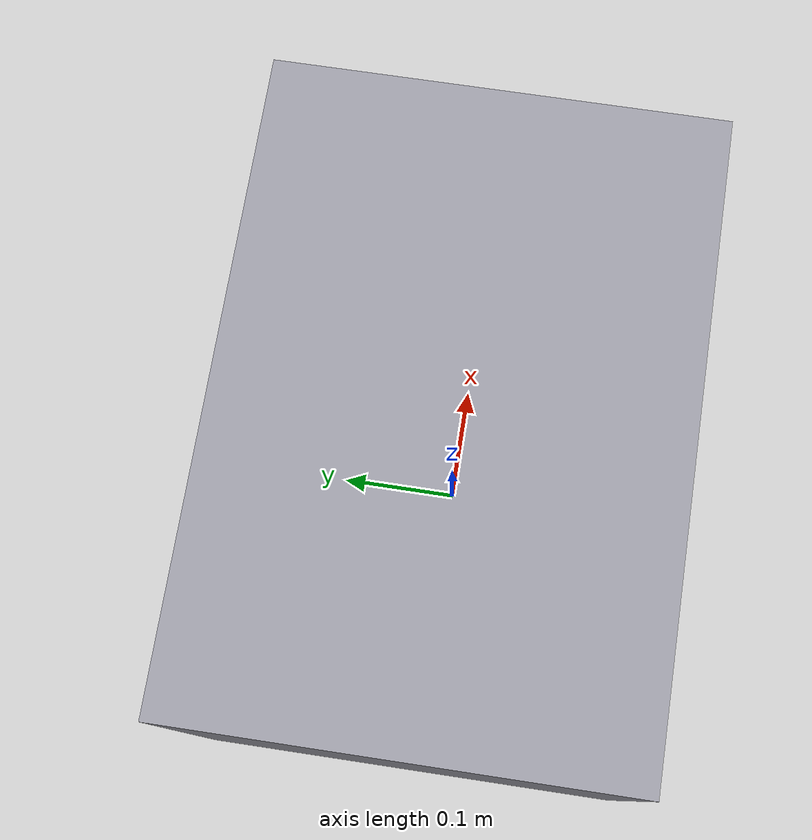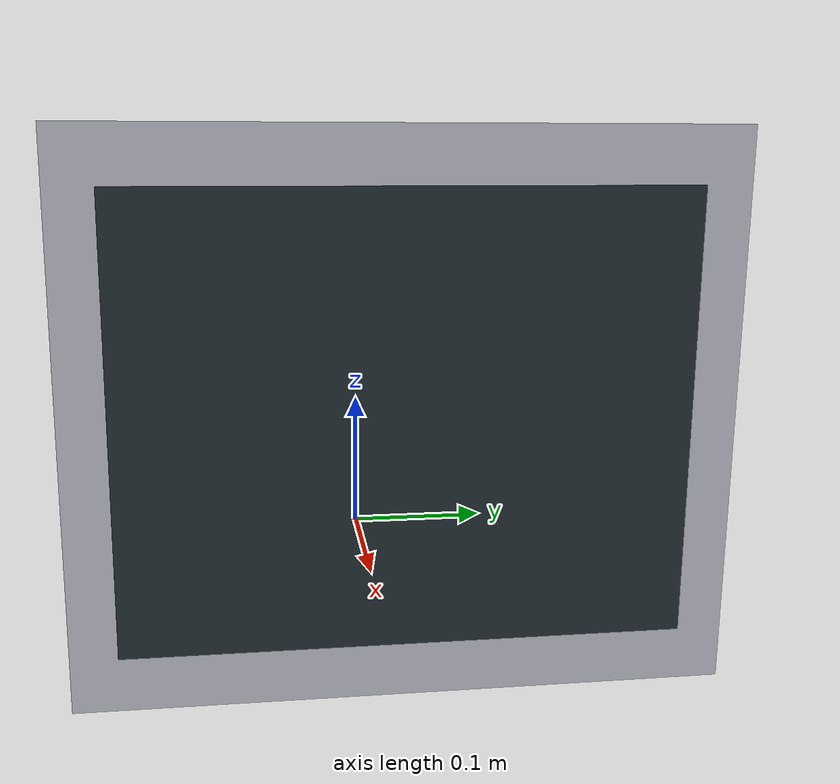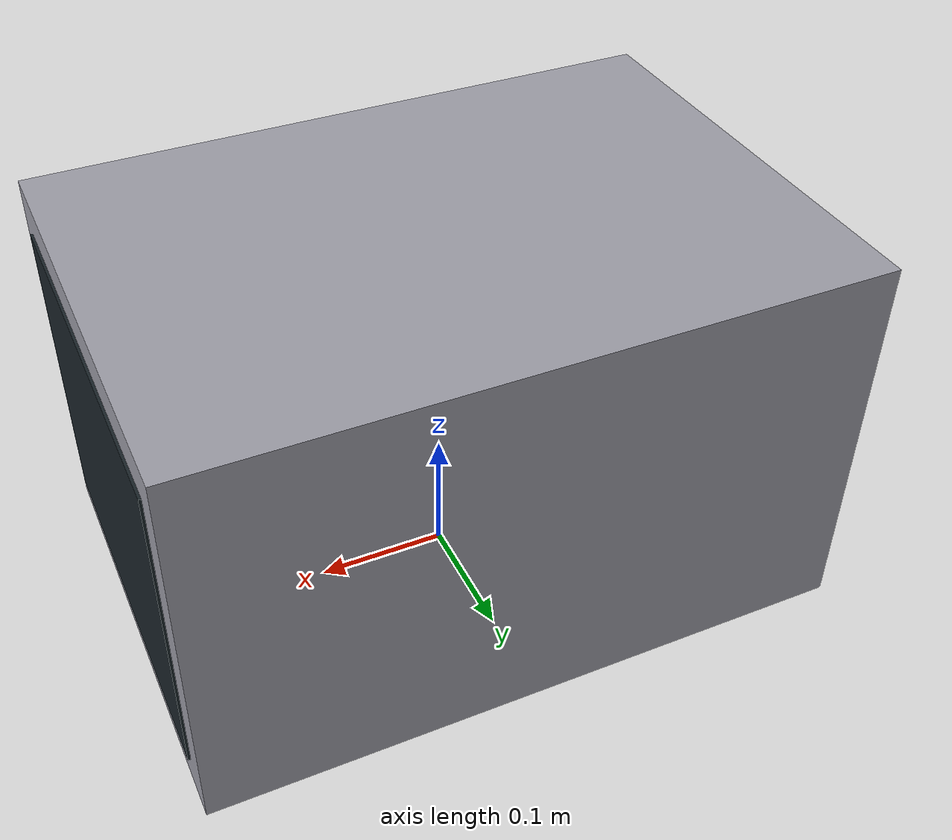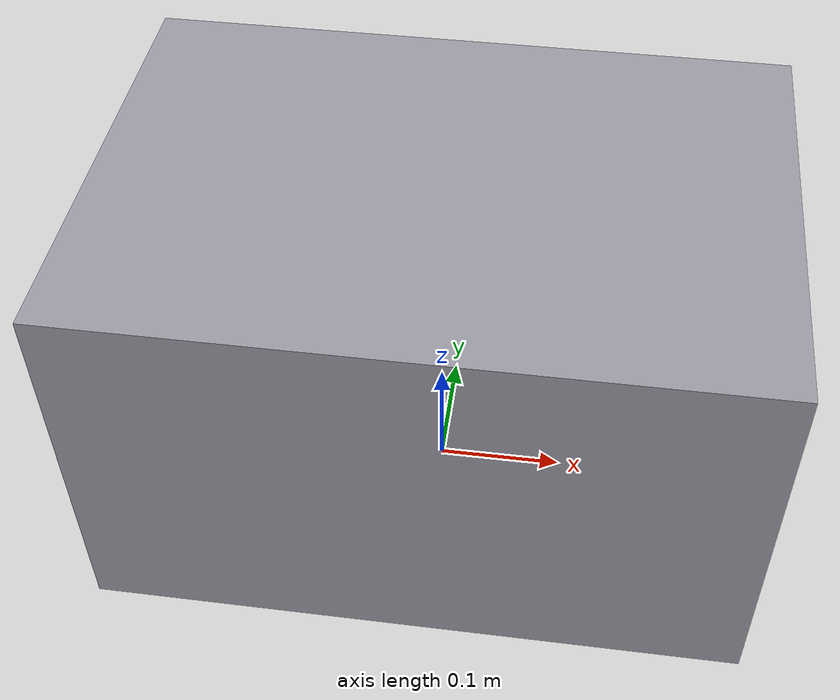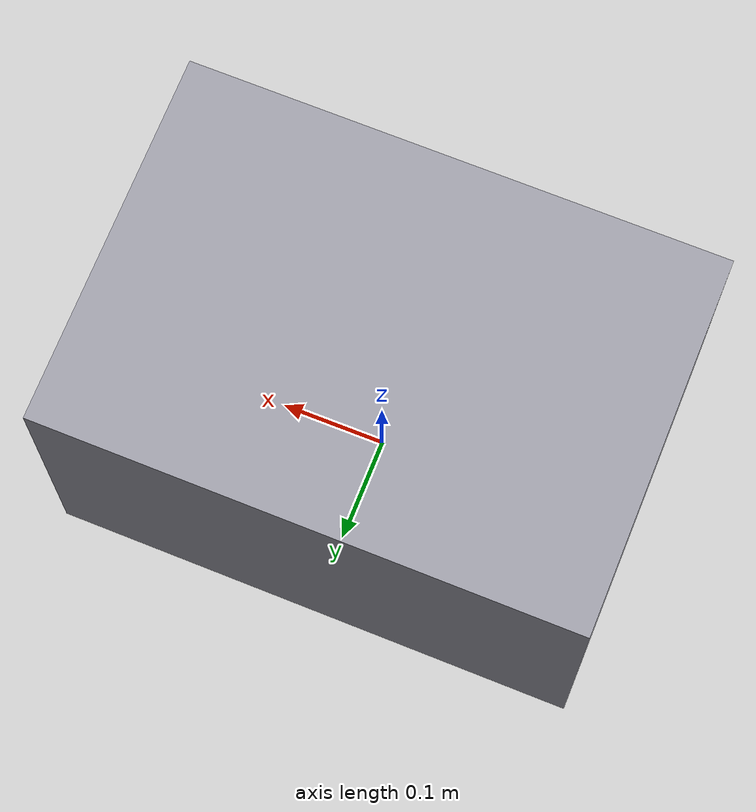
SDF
<?xml version="1.0"?>
<sdf version="1.6">
  <model name="microwave">
    <static>true</static>
    <link name="microwave_link">
      <collision name="body_collision">
        <pose>0 0 0.15 0 0 0</pose>
        <geometry>
          <box>
            <size>0.5 0.35 0.3</size>
          </box>
        </geometry>
      </collision>
      <visual name="body_visual">
        <pose>0 0 0.15 0 0 0</pose>
        <geometry>
          <box>
            <size>0.5 0.35 0.3</size>
          </box>
        </geometry>
        <material>
          <ambient>0.55 0.55 0.58 1.0</ambient>
          <diffuse>0.62 0.62 0.66 1.0</diffuse>
        </material>
      </visual>
      <visual name="door_visual">
        <pose>0.251 0 0.15 0 0 0</pose>
        <geometry>
          <box>
            <size>0.002 0.3 0.24</size>
          </box>
        </geometry>
        <material>
          <ambient>0.08 0.1 0.12 1.0</ambient>
          <diffuse>0.1 0.14 0.16 1.0</diffuse>
        </material>
      </visual>
    </link>
  </model>
</sdf>
